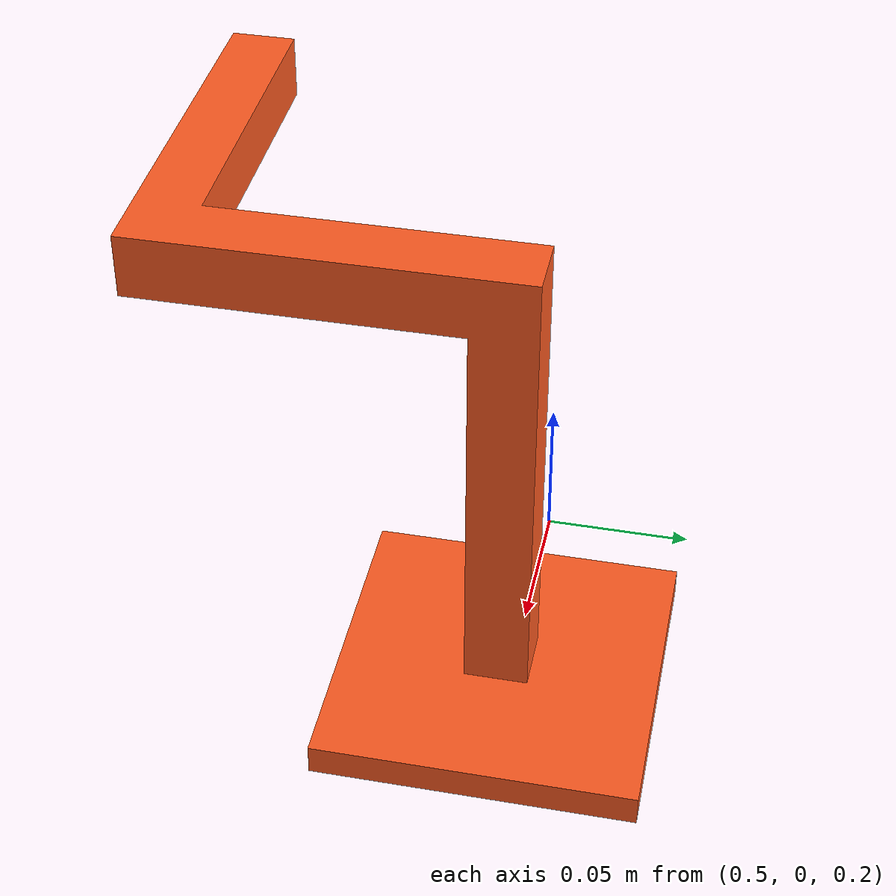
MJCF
<mujoco model="wire_base">
    <asset>
        <material name="orange_mat" rgba="1 0.356 0.133 1.0"/>
        <mesh name="my_mesh" file="/path/to/Intervention_IL_AR/intervene_base/mujoco_scenes/wire_and_loop_assets/Basic_Model_Body.stl" scale="0.001 0.001 0.001"/>
    </asset>

    <default>
        <default class="wire_base_collision">
            <geom contype="1" conaffinity="1"
                  rgba="0 1 0 0.2"
                  friction="0 0 0"
                  solref="0.01 1"
                  solimp="0.95 0.99 0.001 0.5 2"
                  condim="1"
                  margin="0"
                  gap="0"/>
        </default>
    </default>

    <worldbody>
        <body name="object" pos="0.6 -0.0 0.22">
            <joint name="wire_base_free" type="free"/>
            <geom type="mesh" mesh="my_mesh" material="orange_mat"
                  contype="1" conaffinity="1"/>
        </body>
    </worldbody>
</mujoco>
